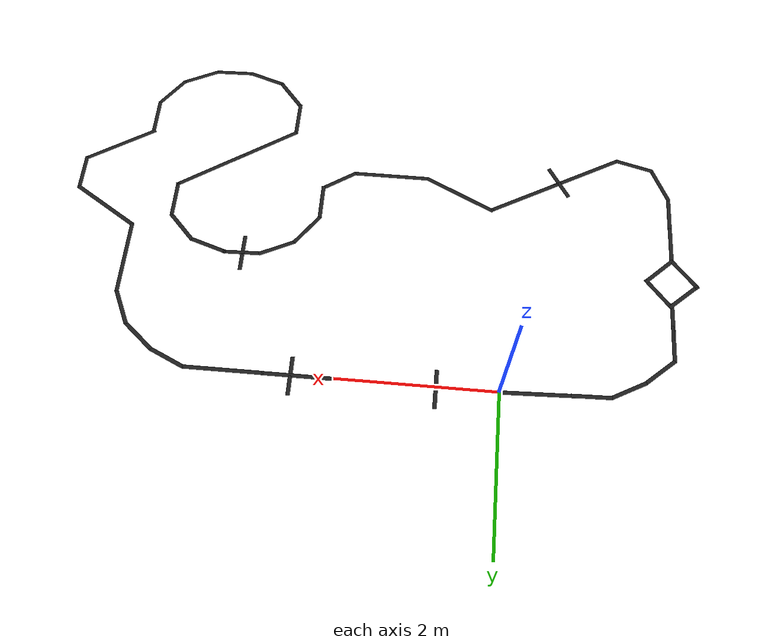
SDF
<sdf version="1.7">
 <world name="default">
  <light name="sun" type="directional">
   <pose>0 0 10 0 -0 0</pose>
   <diffuse>0.8 0.8 0.8 1</diffuse>
   <specular>0.2 0.2 0.2 1</specular>
   <attenuation>
    <range>1000</range>
    <constant>0.9</constant>
    <linear>0.01</linear>
    <quadratic>0.001</quadratic>
   </attenuation>
   <direction>-0.5 0.1 -0.9</direction>
   <spot><inner_angle>0</inner_angle><outer_angle>0</outer_angle><falloff>0</falloff></spot>
  </light>
  <model name="ground_plane">
   <static>1</static>
   <link name="link">
    <collision name="collision">
     <geometry><plane><normal>0 0 1</normal><size>100 100</size></plane></geometry>
     <surface>
      <contact><collide_bitmask>65535</collide_bitmask></contact>
      <friction><ode><mu>100</mu><mu2>50</mu2></ode></friction>
     </surface>
    </collision>
    <visual name="visual">
     <cast_shadows>0</cast_shadows>
     <geometry><plane><normal>0 0 1</normal><size>100 100</size></plane></geometry>
     <material><ambient>1 1 1 1</ambient><diffuse>1 1 1 1</diffuse><name>MyMaterials/White</name></material>
    </visual>
   </link>
  </model>
  <gravity>0 0 -9.8</gravity>
  <magnetic_field>6e-06 2.3e-05 -4.2e-05</magnetic_field>
  <atmosphere type="adiabatic"/>
  <physics type="ode">
   <max_step_size>0.001</max_step_size>
   <real_time_factor>1</real_time_factor>
   <real_time_update_rate>1000</real_time_update_rate>
  </physics>
  <scene><ambient>0.4 0.4 0.4 1</ambient><background>0.7 0.7 0.7 1</background><shadows>1</shadows></scene>
  <spherical_coordinates>
   <surface_model>EARTH_WGS84</surface_model>
   <latitude_deg>0</latitude_deg>
   <longitude_deg>0</longitude_deg>
   <elevation>0</elevation>
   <heading_deg>0</heading_deg>
  </spherical_coordinates>
  <model name="black_line">
   <static>1</static>
   <link name="link">
    <visual name="visual">
     <geometry><box><size>0.05 1 0.001</size></box></geometry>
     <material>
      <script><uri>file://media/materials/scripts/gazebo.material</uri><name>Gazebo/Black</name></script>
     </material>
    </visual>
   </link>
   <pose>0.470225 -0.007023 0 0 0 -1.56977</pose>
  </model>
  <model name="black_line_clone">
   <static>1</static>
   <link name="link">
    <visual name="visual">
     <geometry><box><size>0.05 1 0.001</size></box></geometry>
     <material>
      <script><uri>file://media/materials/scripts/gazebo.material</uri><name>Gazebo/Black</name></script>
     </material>
    </visual>
   </link>
   <pose>1.43071 -0.007847 0 0 0 -1.56977</pose>
  </model>
  <model name="black_line_clone_0">
   <static>1</static>
   <link name="link">
    <visual name="visual">
     <geometry><box><size>0.05 1 0.001</size></box></geometry>
     <material>
      <script><uri>file://media/materials/scripts/gazebo.material</uri><name>Gazebo/Black</name></script>
     </material>
    </visual>
   </link>
   <pose>2.39445 -0.003648 0 0 0 -1.56977</pose>
  </model>
  <model name="black_line_clone_1">
   <static>1</static>
   <link name="link">
    <visual name="visual">
     <geometry><box><size>0.05 1 0.001</size></box></geometry>
     <material>
      <script><uri>file://media/materials/scripts/gazebo.material</uri><name>Gazebo/Black</name></script>
     </material>
    </visual>
   </link>
   <pose>3.37061 -0.004175 0 0 0 -1.56977</pose>
  </model>
  <model name="black_line_0">
   <static>1</static>
   <link name="link">
    <visual name="visual">
     <geometry><box><size>0.05 0.5 0.001</size></box></geometry>
     <material>
      <script><uri>file://media/materials/scripts/gazebo.material</uri><name>Gazebo/Black</name></script>
     </material>
    </visual>
   </link>
   <pose>4.08257 -0.102412 0 0 -0 1.14571</pose>
  </model>
  <model name="black_line_1">
   <static>1</static>
   <link name="link">
    <visual name="visual">
     <geometry><box><size>0.05 0.5 0.001</size></box></geometry>
     <material>
      <script><uri>file://media/materials/scripts/gazebo.material</uri><name>Gazebo/Black</name></script>
     </material>
    </visual>
   </link>
   <pose>4.48662 -0.358046 0 0 -0 0.871039</pose>
  </model>
  <model name="black_line_1_clone">
   <static>1</static>
   <link name="link">
    <visual name="visual">
     <geometry><box><size>0.05 0.5 0.001</size></box></geometry>
     <material>
      <script><uri>file://media/materials/scripts/gazebo.material</uri><name>Gazebo/Black</name></script>
     </material>
    </visual>
   </link>
   <pose>4.77871 -0.732008 0 0 -0 0.444897</pose>
  </model>
  <model name="black_line_2">
   <static>1</static>
   <link name="link">
    <visual name="visual">
     <geometry><box><size>0.05 1 0.001</size></box></geometry>
     <material>
      <script><uri>file://media/materials/scripts/gazebo.material</uri><name>Gazebo/Black</name></script>
     </material>
    </visual>
   </link>
   <pose>4.88307 -1.44716 0 0 -0 0</pose>
  </model>
  <model name="black_line_3">
   <static>1</static>
   <link name="link">
    <visual name="visual">
     <geometry><box><size>0.05 1 0.001</size></box></geometry>
     <material>
      <script><uri>file://media/materials/scripts/gazebo.material</uri><name>Gazebo/Black</name></script>
     </material>
    </visual>
   </link>
   <pose>5.29582 -2.18297 0 0 -0 1.01525</pose>
  </model>
  <model name="black_line_4">
   <static>1</static>
   <link name="link">
    <visual name="visual">
     <geometry><box><size>0.05 0.5 0.001</size></box></geometry>
     <material>
      <script><uri>file://media/materials/scripts/gazebo.material</uri><name>Gazebo/Black</name></script>
     </material>
    </visual>
   </link>
   <pose>2.53726 0.003937 0 0 -0 0</pose>
  </model>
  <model name="black_line_4_clone">
   <static>1</static>
   <link name="link">
    <visual name="visual">
     <geometry><box><size>0.05 0.5 0.001</size></box></geometry>
     <material>
      <script><uri>file://media/materials/scripts/gazebo.material</uri><name>Gazebo/Black</name></script>
     </material>
    </visual>
   </link>
   <pose>0.762728 0.022266 0 0 -0 0</pose>
  </model>
  <model name="black_line_5">
   <static>1</static>
   <link name="link">
    <visual name="visual">
     <geometry><box><size>0.05 0.5 0.001</size></box></geometry>
     <material>
      <script><uri>file://media/materials/scripts/gazebo.material</uri><name>Gazebo/Black</name></script>
     </material>
    </visual>
   </link>
   <pose>5.70605 -2.67492 0 0 -0 0</pose>
  </model>
  <model name="black_line_3_clone">
   <static>1</static>
   <link name="link">
    <visual name="visual">
     <geometry><box><size>0.05 1 0.001</size></box></geometry>
     <material>
      <script><uri>file://media/materials/scripts/gazebo.material</uri><name>Gazebo/Black</name></script>
     </material>
    </visual>
   </link>
   <pose>5.28269 -3.16542 0 0 -0 2.12628</pose>
  </model>
  <model name="black_line_6">
   <static>1</static>
   <link name="link">
    <visual name="visual">
     <geometry><box><size>0.05 0.5 0.001</size></box></geometry>
     <material>
      <script><uri>file://media/materials/scripts/gazebo.material</uri><name>Gazebo/Black</name></script>
     </material>
    </visual>
   </link>
   <pose>4.88506 -3.66953 0 0 -0 0</pose>
  </model>
  <model name="black_line_6_clone">
   <static>1</static>
   <link name="link">
    <visual name="visual">
     <geometry><box><size>0.05 0.5 0.001</size></box></geometry>
     <material>
      <script><uri>file://media/materials/scripts/gazebo.material</uri><name>Gazebo/Black</name></script>
     </material>
    </visual>
   </link>
   <pose>4.74199 -4.10337 0 0 0 -0.629004</pose>
  </model>
  <model name="black_line_6_clone_clone">
   <static>1</static>
   <link name="link">
    <visual name="visual">
     <geometry><box><size>0.05 0.5 0.001</size></box></geometry>
     <material>
      <script><uri>file://media/materials/scripts/gazebo.material</uri><name>Gazebo/Black</name></script>
     </material>
    </visual>
   </link>
   <pose>4.38114 -4.40399 0 0 0 -1.11798</pose>
  </model>
  <model name="black_line_6_clone_clone_0">
   <static>1</static>
   <link name="link">
    <visual name="visual">
     <geometry><box><size>0.05 0.5 0.001</size></box></geometry>
     <material>
      <script><uri>file://media/materials/scripts/gazebo.material</uri><name>Gazebo/Black</name></script>
     </material>
    </visual>
   </link>
   <pose>3.91858 -4.5171 0 0 0 -1.54435</pose>
  </model>
  <model name="black_line_6_clone_clone_0_clone">
   <static>1</static>
   <link name="link">
    <visual name="visual">
     <geometry><box><size>0.05 0.5 0.001</size></box></geometry>
     <material>
      <script><uri>file://media/materials/scripts/gazebo.material</uri><name>Gazebo/Black</name></script>
     </material>
    </visual>
   </link>
   <pose>3.44999 -4.45218 0 0 0 -1.88118</pose>
  </model>
  <model name="black_line_6_clone_clone_0_clone_0">
   <static>1</static>
   <link name="link">
    <visual name="visual">
     <geometry><box><size>0.05 0.5 0.001</size></box></geometry>
     <material>
      <script><uri>file://media/materials/scripts/gazebo.material</uri><name>Gazebo/Black</name></script>
     </material>
    </visual>
   </link>
   <pose>3.06772 -4.19867 0 0 -0 0.706411</pose>
  </model>
  <model name="black_line_7">
   <static>1</static>
   <link name="link">
    <visual name="visual">
     <geometry><box><size>0.05 1 0.001</size></box></geometry>
     <material>
      <script><uri>file://media/materials/scripts/gazebo.material</uri><name>Gazebo/Black</name></script>
     </material>
    </visual>
   </link>
   <pose>3.31867 -3.29702 0 0 0 -0.992259</pose>
  </model>
  <model name="black_line_6_clone_clone_0_clone_0_clone">
   <static>1</static>
   <link name="link">
    <visual name="visual">
     <geometry><box><size>0.05 0.5 0.001</size></box></geometry>
     <material>
      <script><uri>file://media/materials/scripts/gazebo.material</uri><name>Gazebo/Black</name></script>
     </material>
    </visual>
   </link>
   <pose>2.91386 -3.79094 0 0 0 -0.007611</pose>
  </model>
  <model name="black_line_7_clone">
   <static>1</static>
   <link name="link">
    <visual name="visual">
     <geometry><box><size>0.05 1 0.001</size></box></geometry>
     <material>
      <script><uri>file://media/materials/scripts/gazebo.material</uri><name>Gazebo/Black</name></script>
     </material>
    </visual>
   </link>
   <pose>3.98841 -2.86149 0 0 0 -0.992259</pose>
  </model>
  <model name="black_line_6_clone_0">
   <static>1</static>
   <link name="link">
    <visual name="visual">
     <geometry><box><size>0.05 0.5 0.001</size></box></geometry>
     <material>
      <script><uri>file://media/materials/scripts/gazebo.material</uri><name>Gazebo/Black</name></script>
     </material>
    </visual>
   </link>
   <pose>4.39126 -2.36177 0 0 -0 0</pose>
  </model>
  <model name="black_line_1_clone_clone">
   <static>1</static>
   <link name="link">
    <visual name="visual">
     <geometry><box><size>0.05 0.5 0.001</size></box></geometry>
     <material>
      <script><uri>file://media/materials/scripts/gazebo.material</uri><name>Gazebo/Black</name></script>
     </material>
    </visual>
   </link>
   <pose>4.22932 -1.94641 0 0 -0 0.761847</pose>
  </model>
  <model name="black_line_6_clone_clone_0_clone_clone">
   <static>1</static>
   <link name="link">
    <visual name="visual">
     <geometry><box><size>0.05 0.5 0.001</size></box></geometry>
     <material>
      <script><uri>file://media/materials/scripts/gazebo.material</uri><name>Gazebo/Black</name></script>
     </material>
    </visual>
   </link>
   <pose>3.8276 -1.70055 0 0 0 -1.88118</pose>
  </model>
  <model name="black_line_6_clone_clone_0_clone_1">
   <static>1</static>
   <link name="link">
    <visual name="visual">
     <geometry><box><size>0.05 0.5 0.001</size></box></geometry>
     <material>
      <script><uri>file://media/materials/scripts/gazebo.material</uri><name>Gazebo/Black</name></script>
     </material>
    </visual>
   </link>
   <pose>3.37836 -1.63413 0 0 0 -1.54435</pose>
  </model>
  <model name="black_line_6_clone_clone_clone">
   <static>1</static>
   <link name="link">
    <visual name="visual">
     <geometry><box><size>0.05 0.5 0.001</size></box></geometry>
     <material>
      <script><uri>file://media/materials/scripts/gazebo.material</uri><name>Gazebo/Black</name></script>
     </material>
    </visual>
   </link>
   <pose>2.93493 -1.74314 0 0 0 -1.11798</pose>
  </model>
  <model name="black_line_6_clone_clone_1">
   <static>1</static>
   <link name="link">
    <visual name="visual">
     <geometry><box><size>0.05 0.5 0.001</size></box></geometry>
     <material>
      <script><uri>file://media/materials/scripts/gazebo.material</uri><name>Gazebo/Black</name></script>
     </material>
    </visual>
   </link>
   <pose>2.5782 -2.04429 0 0 0 -0.629004</pose>
  </model>
  <model name="black_line_6_clone_0_clone">
   <static>1</static>
   <link name="link">
    <visual name="visual">
     <geometry><box><size>0.05 0.5 0.001</size></box></geometry>
     <material>
      <script><uri>file://media/materials/scripts/gazebo.material</uri><name>Gazebo/Black</name></script>
     </material>
    </visual>
   </link>
   <pose>2.43671 -2.47995 0 0 -0 0</pose>
  </model>
  <model name="black_line_1_clone_0">
   <static>1</static>
   <link name="link">
    <visual name="visual">
     <geometry><box><size>0.05 0.5 0.001</size></box></geometry>
     <material>
      <script><uri>file://media/materials/scripts/gazebo.material</uri><name>Gazebo/Black</name></script>
     </material>
    </visual>
   </link>
   <pose>2.23681 -2.83467 0 0 0 -0.993435</pose>
  </model>
  <model name="black_line_4_clone_0">
   <static>1</static>
   <link name="link">
    <visual name="visual">
     <geometry><box><size>0.05 0.5 0.001</size></box></geometry>
     <material>
      <script><uri>file://media/materials/scripts/gazebo.material</uri><name>Gazebo/Black</name></script>
     </material>
    </visual>
   </link>
   <pose>3.37078 -1.63028 0 0 -0 0</pose>
  </model>
  <model name="black_line_clone_0_clone">
   <static>1</static>
   <link name="link">
    <visual name="visual">
     <geometry><box><size>0.05 1 0.001</size></box></geometry>
     <material>
      <script><uri>file://media/materials/scripts/gazebo.material</uri><name>Gazebo/Black</name></script>
     </material>
    </visual>
   </link>
   <pose>1.53614 -2.96862 0 0 0 -1.56977</pose>
  </model>
  <model name="black_line_clone_0_clone_0">
   <static>1</static>
   <link name="link">
    <visual name="visual">
     <geometry><box><size>0.05 1 0.001</size></box></geometry>
     <material>
      <script><uri>file://media/materials/scripts/gazebo.material</uri><name>Gazebo/Black</name></script>
     </material>
    </visual>
   </link>
   <pose>0.606748 -2.75536 0 0 0 -2.01893</pose>
  </model>
  <model name="black_line_clone_0_clone_1">
   <static>1</static>
   <link name="link">
    <visual name="visual">
     <geometry><box><size>0.05 1 0.001</size></box></geometry>
     <material>
      <script><uri>file://media/materials/scripts/gazebo.material</uri><name>Gazebo/Black</name></script>
     </material>
    </visual>
   </link>
   <pose>-0.261589 -2.79362 0 0 0 -1.06778</pose>
  </model>
  <model name="black_line_clone_0_clone_1_clone">
   <static>1</static>
   <link name="link">
    <visual name="visual">
     <geometry><box><size>0.05 1 0.001</size></box></geometry>
     <material>
      <script><uri>file://media/materials/scripts/gazebo.material</uri><name>Gazebo/Black</name></script>
     </material>
    </visual>
   </link>
   <pose>-1.07483 -3.24237 0 0 0 -1.06778</pose>
  </model>
  <model name="black_line_4_clone_1">
   <static>1</static>
   <link name="link">
    <visual name="visual">
     <geometry><box><size>0.05 0.5 0.001</size></box></geometry>
     <material>
      <script><uri>file://media/materials/scripts/gazebo.material</uri><name>Gazebo/Black</name></script>
     </material>
    </visual>
   </link>
   <pose>-0.706806 -3.05573 0 0 -0 0.563576</pose>
  </model>
  <model name="black_line_4_clone_2">
   <static>1</static>
   <link name="link">
    <visual name="visual">
     <geometry><box><size>0.05 0.5 0.001</size></box></geometry>
     <material>
      <script><uri>file://media/materials/scripts/gazebo.material</uri><name>Gazebo/Black</name></script>
     </material>
    </visual>
   </link>
   <pose>-1.97718 -1.50248 0 0 -0 0.708866</pose>
  </model>
  <model name="black_line_4_clone_3">
   <static>1</static>
   <link name="link">
    <visual name="visual">
     <geometry><box><size>0.05 0.5 0.001</size></box></geometry>
     <material>
      <script><uri>file://media/materials/scripts/gazebo.material</uri><name>Gazebo/Black</name></script>
     </material>
    </visual>
   </link>
   <pose>-1.99768 -1.82626 0 0 0 -0.817953</pose>
  </model>
  <model name="black_line_4_clone_2_clone">
   <static>1</static>
   <link name="link">
    <visual name="visual">
     <geometry><box><size>0.05 0.5 0.001</size></box></geometry>
     <material>
      <script><uri>file://media/materials/scripts/gazebo.material</uri><name>Gazebo/Black</name></script>
     </material>
    </visual>
   </link>
   <pose>-2.32074 -1.80715 0 0 -0 0.71369</pose>
  </model>
  <model name="black_line_4_clone_3_clone">
   <static>1</static>
   <link name="link">
    <visual name="visual">
     <geometry><box><size>0.05 0.5 0.001</size></box></geometry>
     <material>
      <script><uri>file://media/materials/scripts/gazebo.material</uri><name>Gazebo/Black</name></script>
     </material>
    </visual>
   </link>
   <pose>-2.29306 -1.48633 0 0 0 -0.845509</pose>
  </model>
  <model name="black_line_6_clone_clone_2">
   <static>1</static>
   <link name="link">
    <visual name="visual">
     <geometry><box><size>0.05 0.5 0.001</size></box></geometry>
     <material>
      <script><uri>file://media/materials/scripts/gazebo.material</uri><name>Gazebo/Black</name></script>
     </material>
    </visual>
   </link>
   <pose>-1.72866 -3.41369 0 0 0 -1.82104</pose>
  </model>
  <model name="black_line_6_clone_clone_3">
   <static>1</static>
   <link name="link">
    <visual name="visual">
     <geometry><box><size>0.05 0.5 0.001</size></box></geometry>
     <material>
      <script><uri>file://media/materials/scripts/gazebo.material</uri><name>Gazebo/Black</name></script>
     </material>
    </visual>
   </link>
   <pose>-2.06159 -3.12876 0 0 -0 0.439964</pose>
  </model>
  <model name="black_line_8">
   <static>1</static>
   <link name="link">
    <visual name="visual">
     <geometry><box><size>0.05 0.5 0.001</size></box></geometry>
     <material>
      <script><uri>file://media/materials/scripts/gazebo.material</uri><name>Gazebo/Black</name></script>
     </material>
    </visual>
   </link>
   <pose>-2.1615 -2.67428 0 0 -0 0</pose>
  </model>
  <model name="black_line_9">
   <static>1</static>
   <link name="link">
    <visual name="visual">
     <geometry><box><size>0.05 0.5 0.001</size></box></geometry>
     <material>
      <script><uri>file://media/materials/scripts/gazebo.material</uri><name>Gazebo/Black</name></script>
     </material>
    </visual>
   </link>
   <pose>-2.16275 -2.22778 0 0 -0 0</pose>
  </model>
  <model name="black_line_9_clone">
   <static>1</static>
   <link name="link">
    <visual name="visual">
     <geometry><box><size>0.05 0.5 0.001</size></box></geometry>
     <material>
      <script><uri>file://media/materials/scripts/gazebo.material</uri><name>Gazebo/Black</name></script>
     </material>
    </visual>
   </link>
   <pose>-2.13855 -1.12772 0 0 -0 0</pose>
  </model>
  <model name="black_line_6_clone_clone_0_clone_0_clone_clone">
   <static>1</static>
   <link name="link">
    <visual name="visual">
     <geometry><box><size>0.05 0.5 0.001</size></box></geometry>
     <material>
      <script><uri>file://media/materials/scripts/gazebo.material</uri><name>Gazebo/Black</name></script>
     </material>
    </visual>
   </link>
   <pose>-2.13772 -0.821071 0 0 0 -0.007611</pose>
  </model>
  <model name="black_line_6_clone_clone_0_clone_0_clone_0">
   <static>1</static>
   <link name="link">
    <visual name="visual">
     <geometry><box><size>0.05 0.5 0.001</size></box></geometry>
     <material>
      <script><uri>file://media/materials/scripts/gazebo.material</uri><name>Gazebo/Black</name></script>
     </material>
    </visual>
   </link>
   <pose>-1.95407 -0.432174 0 0 0 -0.855362</pose>
  </model>
  <model name="black_line_6_clone_clone_0_clone_clone_0">
   <static>1</static>
   <link name="link">
    <visual name="visual">
     <geometry><box><size>0.05 0.5 0.001</size></box></geometry>
     <material>
      <script><uri>file://media/materials/scripts/gazebo.material</uri><name>Gazebo/Black</name></script>
     </material>
    </visual>
   </link>
   <pose>-1.56397 -0.162269 0 0 0 -1.0777</pose>
  </model>
  <model name="black_line_6_clone_clone_0_clone_2">
   <static>1</static>
   <link name="link">
    <visual name="visual">
     <geometry><box><size>0.05 0.5 0.001</size></box></geometry>
     <material>
      <script><uri>file://media/materials/scripts/gazebo.material</uri><name>Gazebo/Black</name></script>
     </material>
    </visual>
   </link>
   <pose>-1.11454 -0.045196 0 0 0 -1.54435</pose>
  </model>
  <model name="black_line_clone_2">
   <static>1</static>
   <link name="link">
    <visual name="visual">
     <geometry><box><size>0.05 1 0.001</size></box></geometry>
     <material>
      <script><uri>file://media/materials/scripts/gazebo.material</uri><name>Gazebo/Black</name></script>
     </material>
    </visual>
   </link>
   <pose>-0.455472 -0.021391 0 0 0 -1.53528</pose>
  </model>
 </world>
</sdf>
